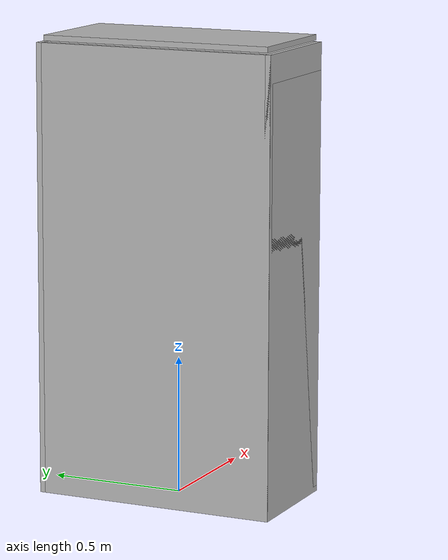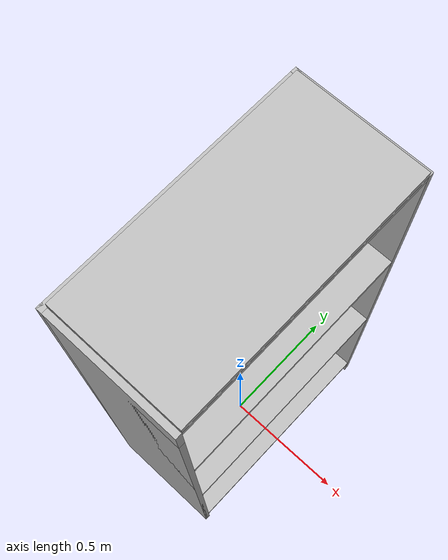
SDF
<?xml version="1.0" ?>
<sdf version="1.6">
  <model name="rwc2023/grey_cabinet">
    <static>true</static>
    <link name="1_link">
      <collision name="1_col">
        <geometry>
          <box>
            <size>0.45 0.02 1.64</size>
          </box>
        </geometry>
      </collision>
      <visual name="1_vis">
        <geometry>
          <box>
            <size>0.45 0.02 1.64</size>
          </box>
        </geometry>
      </visual>
      <pose>0.0 -0.44 0.82 0 0 0</pose>
    </link>
    <link name="2_link">
      <collision name="2_col">
        <geometry>
          <box>
            <size>0.45 0.02 1.64</size>
          </box>
        </geometry>
      </collision>
      <visual name="2_vis">
        <geometry>
          <box>
            <size>0.45 0.02 1.64</size>
          </box>
        </geometry>
      </visual>
      <pose>0.0 0.44 0.82 0 0 0</pose>
    </link>
    <link name="3_link">
      <collision name="3_col">
        <geometry>
          <box>
            <size>0.02 0.9 1.64</size>
          </box>
        </geometry>
      </collision>
      <visual name="3_vis">
        <geometry>
          <box>
            <size>0.02 0.9 1.64</size>
          </box>
        </geometry>
      </visual>
      <pose>-0.215 0.0 0.82 0 0 0</pose>
    </link>
    <link name="4_link">
      <collision name="4_col">
        <geometry>
          <box>
            <size>0.43 0.86 0.02</size>
          </box>
        </geometry>
      </collision>
      <visual name="4_vis">
        <geometry>
          <box>
            <size>0.43 0.86 0.02</size>
          </box>
        </geometry>
      </visual>
      <pose>0.01 0.0 1.63 0 0 0</pose>
    </link>
    <link name="5_link">
      <collision name="5_col">
        <geometry>
          <box>
            <size>0.43 0.86 0.02</size>
          </box>
        </geometry>
      </collision>
      <visual name="5_vis">
        <geometry>
          <box>
            <size>0.43 0.86 0.02</size>
          </box>
        </geometry>
      </visual>
      <pose>0.01 0.0 0.09 0 0 0</pose>
    </link>
    <link name="6_link">
      <collision name="6_col">
        <geometry>
          <box>
            <size>0.43 0.86 0.02</size>
          </box>
        </geometry>
      </collision>
      <visual name="6_vis">
        <geometry>
          <box>
            <size>0.43 0.86 0.02</size>
          </box>
        </geometry>
      </visual>
      <pose>0.01 0.0 0.635 0 0 0</pose>
    </link>
    <link name="7_link">
      <collision name="7_col">
        <geometry>
          <box>
            <size>0.43 0.86 0.02</size>
          </box>
        </geometry>
      </collision>
      <visual name="7_vis">
        <geometry>
          <box>
            <size>0.43 0.86 0.02</size>
          </box>
        </geometry>
      </visual>
      <pose>0.01 0.0 1.135 0 0 0</pose>
    </link>
    <link name="8_link">
      <collision name="8_col">
        <geometry>
          <box>
            <size>0.43 0.86 0.02</size>
          </box>
        </geometry>
      </collision>
      <visual name="8_vis">
        <geometry>
          <box>
            <size>0.43 0.86 0.02</size>
          </box>
        </geometry>
      </visual>
      <pose>0.01 0.0 1.655 0 0 0</pose>
    </link>
    <link name="9_link">
      <collision name="9_col">
        <geometry>
          <box>
            <size>0.43 0.02 1.52</size>
          </box>
        </geometry>
      </collision>
      <visual name="9_vis">
        <geometry>
          <box>
            <size>0.43 0.02 1.52</size>
          </box>
        </geometry>
      </visual>
      <pose>0.01 -0.44 0.78 0 0 0</pose>
    </link>
    <link name="in_front_of">
      <virtual_volume name="in_front_of_vv">
        <geometry>
          <box>
            <size>0.2 0.7 0.01</size>
          </box>
        </geometry>
        <pose>0.725 0.0 0.005 0 0 0</pose>
      </virtual_volume>
    </link>
  </model>
</sdf>
